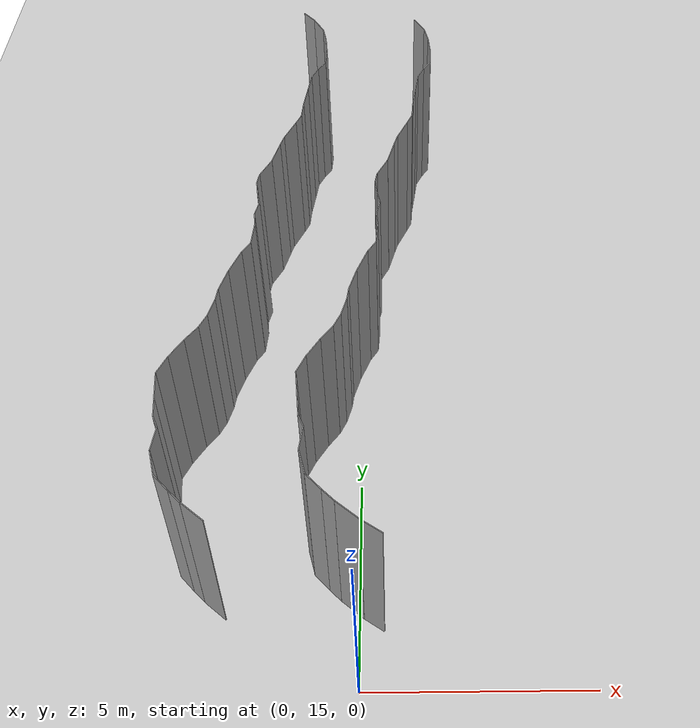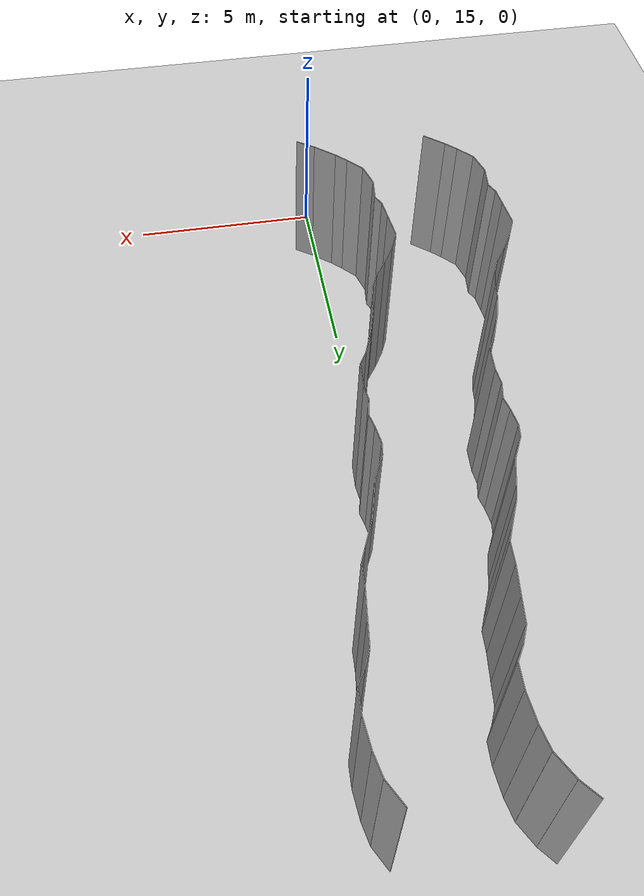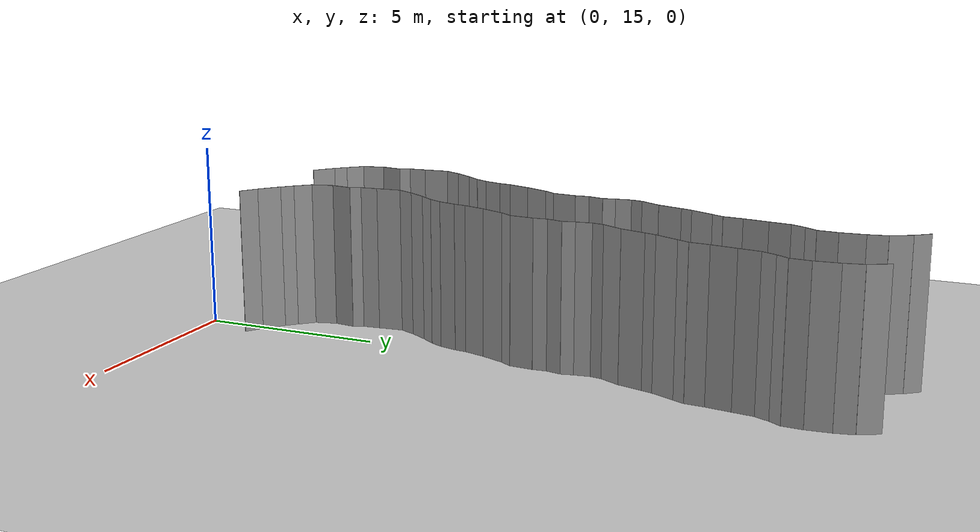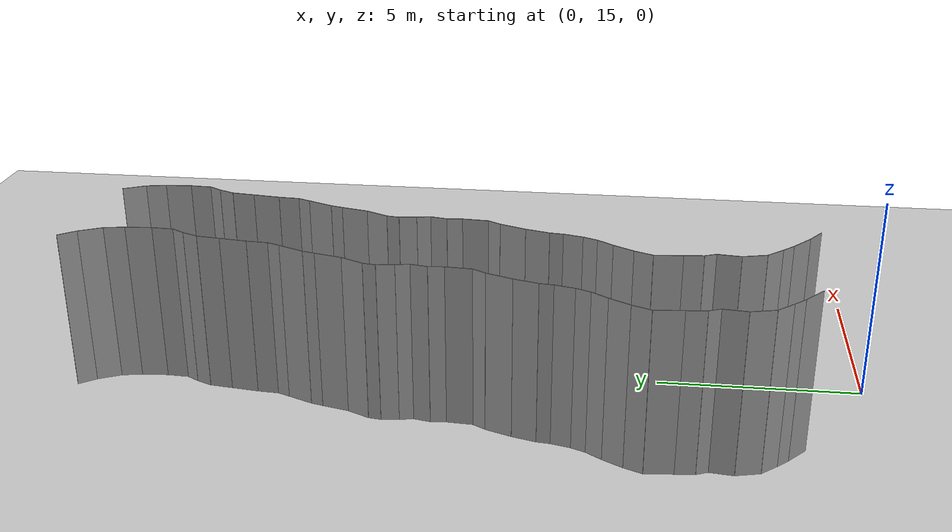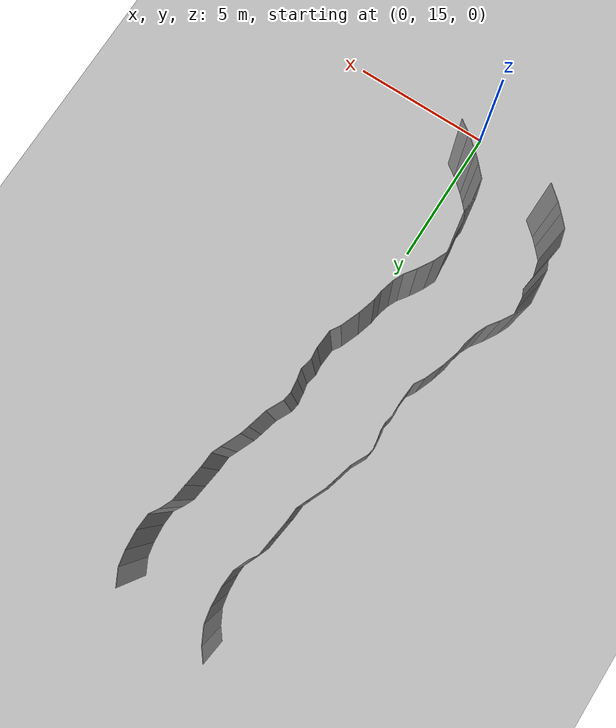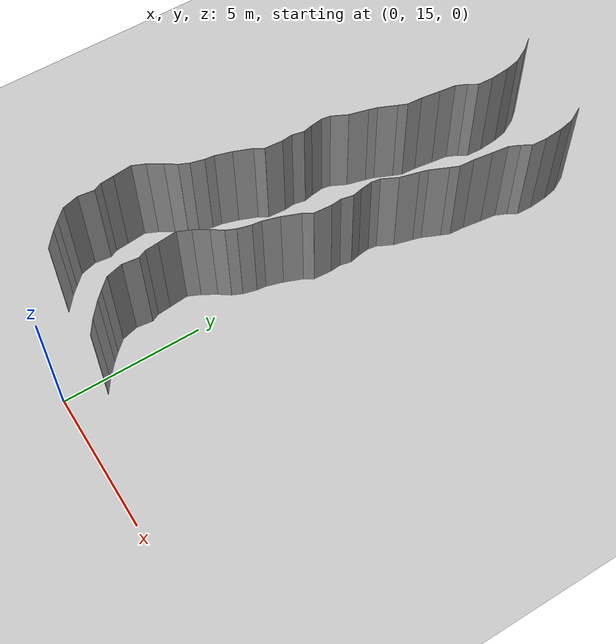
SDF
<sdf version="1.6">
 <world name="default">
  <model name="ground_plane">
   <static>1</static>
   <link name="link">
    <collision name="collision">
     <geometry><plane><normal>0 0 1</normal><size>200 200</size></plane></geometry>
     <surface><friction><ode><mu>100</mu><mu2>50</mu2></ode></friction></surface>
    </collision>
    <visual name="visual">
     <cast_shadows>0</cast_shadows>
     <geometry><plane><normal>0 0 1</normal><size>200 200</size></plane></geometry>
     <material>
      <script><uri>file://media/materials/scripts/gazebo.material</uri><name>Gazebo/Grey</name></script>
     </material>
    </visual>
   </link>
   <pose>0 100 0 0 -0 0</pose>
  </model>
  <model name="wall_73">
   <static>1</static>
   <pose>0.31329101043182295 16.49051149660358 2 0 0 0.9706262165268534</pose>
   <link name="link">
    <collision name="collision"><geometry><box><size>0.02 0.530782549284 4</size></box></geometry></collision>
    <visual name="visual">
     <material>
      <script><name>Gazebo/Grey</name><uri>file://media/materials/scripts/gazebo.material</uri></script>
     </material>
     <geometry><box><size>0.02 0.530782549284 4</size></box></geometry>
    </visual>
   </link>
  </model>
  <model name="wall_74">
   <static>1</static>
   <pose>-3.157199100774008 16.85156726297024 2 0 0 0.8723109527861052</pose>
   <link name="link">
    <collision name="collision"><geometry><box><size>0.02 0.656759292511 4</size></box></geometry></collision>
    <visual name="visual">
     <material>
      <script><name>Gazebo/Grey</name><uri>file://media/materials/scripts/gazebo.material</uri></script>
     </material>
     <geometry><box><size>0.02 0.656759292511 4</size></box></geometry>
    </visual>
   </link>
  </model>
  <model name="wall_75">
   <static>1</static>
   <pose>-0.15719910077400812 16.85156726297024 2 0 0 0.8723109527861052</pose>
   <link name="link">
    <collision name="collision"><geometry><box><size>0.02 0.656759292511 4</size></box></geometry></collision>
    <visual name="visual">
     <material>
      <script><name>Gazebo/Grey</name><uri>file://media/materials/scripts/gazebo.material</uri></script>
     </material>
     <geometry><box><size>0.02 0.656759292511 4</size></box></geometry>
    </visual>
   </link>
  </model>
  <model name="wall_76">
   <static>1</static>
   <pose>-3.5410019303740015 17.194973606267954 2 0 0 0.785719727233147</pose>
   <link name="link">
    <collision name="collision"><geometry><box><size>0.02 0.37414876576 4</size></box></geometry></collision>
    <visual name="visual">
     <material>
      <script><name>Gazebo/Grey</name><uri>file://media/materials/scripts/gazebo.material</uri></script>
     </material>
     <geometry><box><size>0.02 0.37414876576 4</size></box></geometry>
    </visual>
   </link>
  </model>
  <model name="wall_77">
   <static>1</static>
   <pose>-0.5410019303740015 17.194973606267954 2 0 0 0.785719727233147</pose>
   <link name="link">
    <collision name="collision"><geometry><box><size>0.02 0.37414876576 4</size></box></geometry></collision>
    <visual name="visual">
     <material>
      <script><name>Gazebo/Grey</name><uri>file://media/materials/scripts/gazebo.material</uri></script>
     </material>
     <geometry><box><size>0.02 0.37414876576 4</size></box></geometry>
    </visual>
   </link>
  </model>
  <model name="wall_78">
   <static>1</static>
   <pose>-3.846775899688538 17.514674699610165 2 0 0 0.7465932302845639</pose>
   <link name="link">
    <collision name="collision"><geometry><box><size>0.02 0.510791102315 4</size></box></geometry></collision>
    <visual name="visual">
     <material>
      <script><name>Gazebo/Grey</name><uri>file://media/materials/scripts/gazebo.material</uri></script>
     </material>
     <geometry><box><size>0.02 0.510791102315 4</size></box></geometry>
    </visual>
   </link>
  </model>
  <model name="wall_79">
   <static>1</static>
   <pose>-0.846775899688538 17.514674699610165 2 0 0 0.7465932302845639</pose>
   <link name="link">
    <collision name="collision"><geometry><box><size>0.02 0.510791102315 4</size></box></geometry></collision>
    <visual name="visual">
     <material>
      <script><name>Gazebo/Grey</name><uri>file://media/materials/scripts/gazebo.material</uri></script>
     </material>
     <geometry><box><size>0.02 0.510791102315 4</size></box></geometry>
    </visual>
   </link>
  </model>
  <model name="wall_80">
   <static>1</static>
   <pose>-4.097035900784917 17.9949265951174 2 0 0 0.25655750265288335</pose>
   <link name="link">
    <collision name="collision"><geometry><box><size>0.02 0.605394668137 4</size></box></geometry></collision>
    <visual name="visual">
     <material>
      <script><name>Gazebo/Grey</name><uri>file://media/materials/scripts/gazebo.material</uri></script>
     </material>
     <geometry><box><size>0.02 0.605394668137 4</size></box></geometry>
    </visual>
   </link>
  </model>
  <model name="wall_81">
   <static>1</static>
   <pose>-1.0970359007849169 17.9949265951174 2 0 0 0.25655750265288335</pose>
   <link name="link">
    <collision name="collision"><geometry><box><size>0.02 0.605394668137 4</size></box></geometry></collision>
    <visual name="visual">
     <material>
      <script><name>Gazebo/Grey</name><uri>file://media/materials/scripts/gazebo.material</uri></script>
     </material>
     <geometry><box><size>0.02 0.605394668137 4</size></box></geometry>
    </visual>
   </link>
  </model>
  <model name="wall_82">
   <static>1</static>
   <pose>-4.138989819580086 18.575017761858245 2 0 0 -0.12073275835425734</pose>
   <link name="link">
    <collision name="collision"><geometry><box><size>0.02 0.578816092706 4</size></box></geometry></collision>
    <visual name="visual">
     <material>
      <script><name>Gazebo/Grey</name><uri>file://media/materials/scripts/gazebo.material</uri></script>
     </material>
     <geometry><box><size>0.02 0.578816092706 4</size></box></geometry>
    </visual>
   </link>
  </model>
  <model name="wall_83">
   <static>1</static>
   <pose>-1.138989819580086 18.575017761858245 2 0 0 -0.12073275835425734</pose>
   <link name="link">
    <collision name="collision"><geometry><box><size>0.02 0.578816092706 4</size></box></geometry></collision>
    <visual name="visual">
     <material>
      <script><name>Gazebo/Grey</name><uri>file://media/materials/scripts/gazebo.material</uri></script>
     </material>
     <geometry><box><size>0.02 0.578816092706 4</size></box></geometry>
    </visual>
   </link>
  </model>
  <model name="wall_84">
   <static>1</static>
   <pose>-4.166649962904733 19.002464417773794 2 0 0 0.419591238896783</pose>
   <link name="link">
    <collision name="collision"><geometry><box><size>0.02 0.306913686298 4</size></box></geometry></collision>
    <visual name="visual">
     <material>
      <script><name>Gazebo/Grey</name><uri>file://media/materials/scripts/gazebo.material</uri></script>
     </material>
     <geometry><box><size>0.02 0.306913686298 4</size></box></geometry>
    </visual>
   </link>
  </model>
  <model name="wall_85">
   <static>1</static>
   <pose>-1.1666499629047333 19.002464417773794 2 0 0 0.419591238896783</pose>
   <link name="link">
    <collision name="collision"><geometry><box><size>0.02 0.306913686298 4</size></box></geometry></collision>
    <visual name="visual">
     <material>
      <script><name>Gazebo/Grey</name><uri>file://media/materials/scripts/gazebo.material</uri></script>
     </material>
     <geometry><box><size>0.02 0.306913686298 4</size></box></geometry>
    </visual>
   </link>
  </model>
  <model name="wall_86">
   <static>1</static>
   <pose>-4.251439221728751 19.37861607447198 2 0 0 0.09409549724734022</pose>
   <link name="link">
    <collision name="collision"><geometry><box><size>0.02 0.474110016909 4</size></box></geometry></collision>
    <visual name="visual">
     <material>
      <script><name>Gazebo/Grey</name><uri>file://media/materials/scripts/gazebo.material</uri></script>
     </material>
     <geometry><box><size>0.02 0.474110016909 4</size></box></geometry>
    </visual>
   </link>
  </model>
  <model name="wall_87">
   <static>1</static>
   <pose>-1.2514392217287513 19.37861607447198 2 0 0 0.09409549724734022</pose>
   <link name="link">
    <collision name="collision"><geometry><box><size>0.02 0.474110016909 4</size></box></geometry></collision>
    <visual name="visual">
     <material>
      <script><name>Gazebo/Grey</name><uri>file://media/materials/scripts/gazebo.material</uri></script>
     </material>
     <geometry><box><size>0.02 0.474110016909 4</size></box></geometry>
    </visual>
   </link>
  </model>
  <model name="wall_88">
   <static>1</static>
   <pose>-4.306238091092408 19.958148947083053 2 0 0 0.09440110870214406</pose>
   <link name="link">
    <collision name="collision"><geometry><box><size>0.02 0.690125825453 4</size></box></geometry></collision>
    <visual name="visual">
     <material>
      <script><name>Gazebo/Grey</name><uri>file://media/materials/scripts/gazebo.material</uri></script>
     </material>
     <geometry><box><size>0.02 0.690125825453 4</size></box></geometry>
    </visual>
   </link>
  </model>
  <model name="wall_89">
   <static>1</static>
   <pose>-1.3062380910924078 19.958148947083053 2 0 0 0.09440110870214406</pose>
   <link name="link">
    <collision name="collision"><geometry><box><size>0.02 0.690125825453 4</size></box></geometry></collision>
    <visual name="visual">
     <material>
      <script><name>Gazebo/Grey</name><uri>file://media/materials/scripts/gazebo.material</uri></script>
     </material>
     <geometry><box><size>0.02 0.690125825453 4</size></box></geometry>
    </visual>
   </link>
  </model>
  <model name="wall_90">
   <static>1</static>
   <pose>-4.238966576912943 20.52339285409663 2 0 0 -0.4229463978921424</pose>
   <link name="link">
    <collision name="collision"><geometry><box><size>0.02 0.486284411735 4</size></box></geometry></collision>
    <visual name="visual">
     <material>
      <script><name>Gazebo/Grey</name><uri>file://media/materials/scripts/gazebo.material</uri></script>
     </material>
     <geometry><box><size>0.02 0.486284411735 4</size></box></geometry>
    </visual>
   </link>
  </model>
  <model name="wall_91">
   <static>1</static>
   <pose>-1.2389665769129428 20.52339285409663 2 0 0 -0.4229463978921424</pose>
   <link name="link">
    <collision name="collision"><geometry><box><size>0.02 0.486284411735 4</size></box></geometry></collision>
    <visual name="visual">
     <material>
      <script><name>Gazebo/Grey</name><uri>file://media/materials/scripts/gazebo.material</uri></script>
     </material>
     <geometry><box><size>0.02 0.486284411735 4</size></box></geometry>
    </visual>
   </link>
  </model>
  <model name="wall_92">
   <static>1</static>
   <pose>-3.9930684026813275 20.98827357453839 2 0 0 -0.5410321931736826</pose>
   <link name="link">
    <collision name="collision"><geometry><box><size>0.02 0.567358175248 4</size></box></geometry></collision>
    <visual name="visual">
     <material>
      <script><name>Gazebo/Grey</name><uri>file://media/materials/scripts/gazebo.material</uri></script>
     </material>
     <geometry><box><size>0.02 0.567358175248 4</size></box></geometry>
    </visual>
   </link>
  </model>
  <model name="wall_93">
   <static>1</static>
   <pose>-0.9930684026813275 20.98827357453839 2 0 0 -0.5410321931736826</pose>
   <link name="link">
    <collision name="collision"><geometry><box><size>0.02 0.567358175248 4</size></box></geometry></collision>
    <visual name="visual">
     <material>
      <script><name>Gazebo/Grey</name><uri>file://media/materials/scripts/gazebo.material</uri></script>
     </material>
     <geometry><box><size>0.02 0.567358175248 4</size></box></geometry>
    </visual>
   </link>
  </model>
  <model name="wall_94">
   <static>1</static>
   <pose>-3.710954948063818 21.42127999099794 2 0 0 -0.6216800321269359</pose>
   <link name="link">
    <collision name="collision"><geometry><box><size>0.02 0.467075424061 4</size></box></geometry></collision>
    <visual name="visual">
     <material>
      <script><name>Gazebo/Grey</name><uri>file://media/materials/scripts/gazebo.material</uri></script>
     </material>
     <geometry><box><size>0.02 0.467075424061 4</size></box></geometry>
    </visual>
   </link>
  </model>
  <model name="wall_95">
   <static>1</static>
   <pose>-0.7109549480638182 21.42127999099794 2 0 0 -0.6216800321269359</pose>
   <link name="link">
    <collision name="collision"><geometry><box><size>0.02 0.467075424061 4</size></box></geometry></collision>
    <visual name="visual">
     <material>
      <script><name>Gazebo/Grey</name><uri>file://media/materials/scripts/gazebo.material</uri></script>
     </material>
     <geometry><box><size>0.02 0.467075424061 4</size></box></geometry>
    </visual>
   </link>
  </model>
  <model name="wall_96">
   <static>1</static>
   <pose>-3.495967016049042 21.784691667329003 2 0 0 -0.42701111978185924</pose>
   <link name="link">
    <collision name="collision"><geometry><box><size>0.02 0.3813824212 4</size></box></geometry></collision>
    <visual name="visual">
     <material>
      <script><name>Gazebo/Grey</name><uri>file://media/materials/scripts/gazebo.material</uri></script>
     </material>
     <geometry><box><size>0.02 0.3813824212 4</size></box></geometry>
    </visual>
   </link>
  </model>
  <model name="wall_97">
   <static>1</static>
   <pose>-0.4959670160490419 21.784691667329003 2 0 0 -0.42701111978185924</pose>
   <link name="link">
    <collision name="collision"><geometry><box><size>0.02 0.3813824212 4</size></box></geometry></collision>
    <visual name="visual">
     <material>
      <script><name>Gazebo/Grey</name><uri>file://media/materials/scripts/gazebo.material</uri></script>
     </material>
     <geometry><box><size>0.02 0.3813824212 4</size></box></geometry>
    </visual>
   </link>
  </model>
  <model name="wall_98">
   <static>1</static>
   <pose>-3.353470152372667 22.197159932918193 2 0 0 -0.2598797134249808</pose>
   <link name="link">
    <collision name="collision"><geometry><box><size>0.02 0.494400867129 4</size></box></geometry></collision>
    <visual name="visual">
     <material>
      <script><name>Gazebo/Grey</name><uri>file://media/materials/scripts/gazebo.material</uri></script>
     </material>
     <geometry><box><size>0.02 0.494400867129 4</size></box></geometry>
    </visual>
   </link>
  </model>
  <model name="wall_99">
   <static>1</static>
   <pose>-0.3534701523726671 22.197159932918193 2 0 0 -0.2598797134249808</pose>
   <link name="link">
    <collision name="collision"><geometry><box><size>0.02 0.494400867129 4</size></box></geometry></collision>
    <visual name="visual">
     <material>
      <script><name>Gazebo/Grey</name><uri>file://media/materials/scripts/gazebo.material</uri></script>
     </material>
     <geometry><box><size>0.02 0.494400867129 4</size></box></geometry>
    </visual>
   </link>
  </model>
  <model name="wall_100">
   <static>1</static>
   <pose>-3.2712459088520274 22.601115833528986 2 0 0 -0.1128289668641931</pose>
   <link name="link">
    <collision name="collision"><geometry><box><size>0.02 0.332224904483 4</size></box></geometry></collision>
    <visual name="visual">
     <material>
      <script><name>Gazebo/Grey</name><uri>file://media/materials/scripts/gazebo.material</uri></script>
     </material>
     <geometry><box><size>0.02 0.332224904483 4</size></box></geometry>
    </visual>
   </link>
  </model>
  <model name="wall_101">
   <static>1</static>
   <pose>-0.2712459088520274 22.601115833528986 2 0 0 -0.1128289668641931</pose>
   <link name="link">
    <collision name="collision"><geometry><box><size>0.02 0.332224904483 4</size></box></geometry></collision>
    <visual name="visual">
     <material>
      <script><name>Gazebo/Grey</name><uri>file://media/materials/scripts/gazebo.material</uri></script>
     </material>
     <geometry><box><size>0.02 0.332224904483 4</size></box></geometry>
    </visual>
   </link>
  </model>
  <model name="wall_102">
   <static>1</static>
   <pose>-3.165956985885072 23.061239334601677 2 0 0 -0.28543334103901064</pose>
   <link name="link">
    <collision name="collision"><geometry><box><size>0.02 0.615018340031 4</size></box></geometry></collision>
    <visual name="visual">
     <material>
      <script><name>Gazebo/Grey</name><uri>file://media/materials/scripts/gazebo.material</uri></script>
     </material>
     <geometry><box><size>0.02 0.615018340031 4</size></box></geometry>
    </visual>
   </link>
  </model>
  <model name="wall_103">
   <static>1</static>
   <pose>-0.1659569858850718 23.061239334601677 2 0 0 -0.28543334103901064</pose>
   <link name="link">
    <collision name="collision"><geometry><box><size>0.02 0.615018340031 4</size></box></geometry></collision>
    <visual name="visual">
     <material>
      <script><name>Gazebo/Grey</name><uri>file://media/materials/scripts/gazebo.material</uri></script>
     </material>
     <geometry><box><size>0.02 0.615018340031 4</size></box></geometry>
    </visual>
   </link>
  </model>
  <model name="wall_104">
   <static>1</static>
   <pose>-2.953028230615376 23.677087026653815 2 0 0 -0.37520157667770737</pose>
   <link name="link">
    <collision name="collision"><geometry><box><size>0.02 0.68952877134 4</size></box></geometry></collision>
    <visual name="visual">
     <material>
      <script><name>Gazebo/Grey</name><uri>file://media/materials/scripts/gazebo.material</uri></script>
     </material>
     <geometry><box><size>0.02 0.68952877134 4</size></box></geometry>
    </visual>
   </link>
  </model>
  <model name="wall_105">
   <static>1</static>
   <pose>0.04697176938462411 23.677087026653815 2 0 0 -0.37520157667770737</pose>
   <link name="link">
    <collision name="collision"><geometry><box><size>0.02 0.68952877134 4</size></box></geometry></collision>
    <visual name="visual">
     <material>
      <script><name>Gazebo/Grey</name><uri>file://media/materials/scripts/gazebo.material</uri></script>
     </material>
     <geometry><box><size>0.02 0.68952877134 4</size></box></geometry>
    </visual>
   </link>
  </model>
  <model name="wall_106">
   <static>1</static>
   <pose>-2.730010507990543 24.154274372580694 2 0 0 -0.553623134160334</pose>
   <link name="link">
    <collision name="collision"><geometry><box><size>0.02 0.367745806156 4</size></box></geometry></collision>
    <visual name="visual">
     <material>
      <script><name>Gazebo/Grey</name><uri>file://media/materials/scripts/gazebo.material</uri></script>
     </material>
     <geometry><box><size>0.02 0.367745806156 4</size></box></geometry>
    </visual>
   </link>
  </model>
  <model name="wall_107">
   <static>1</static>
   <pose>0.269989492009457 24.154274372580694 2 0 0 -0.553623134160334</pose>
   <link name="link">
    <collision name="collision"><geometry><box><size>0.02 0.367745806156 4</size></box></geometry></collision>
    <visual name="visual">
     <material>
      <script><name>Gazebo/Grey</name><uri>file://media/materials/scripts/gazebo.material</uri></script>
     </material>
     <geometry><box><size>0.02 0.367745806156 4</size></box></geometry>
    </visual>
   </link>
  </model>
  <model name="wall_108">
   <static>1</static>
   <pose>-2.610411606679472 24.632531272508885 2 0 0 -0.07110431062706264</pose>
   <link name="link">
    <collision name="collision"><geometry><box><size>0.02 0.64533061442 4</size></box></geometry></collision>
    <visual name="visual">
     <material>
      <script><name>Gazebo/Grey</name><uri>file://media/materials/scripts/gazebo.material</uri></script>
     </material>
     <geometry><box><size>0.02 0.64533061442 4</size></box></geometry>
    </visual>
   </link>
  </model>
  <model name="wall_109">
   <static>1</static>
   <pose>0.38958839332052797 24.632531272508885 2 0 0 -0.07110431062706264</pose>
   <link name="link">
    <collision name="collision"><geometry><box><size>0.02 0.64533061442 4</size></box></geometry></collision>
    <visual name="visual">
     <material>
      <script><name>Gazebo/Grey</name><uri>file://media/materials/scripts/gazebo.material</uri></script>
     </material>
     <geometry><box><size>0.02 0.64533061442 4</size></box></geometry>
    </visual>
   </link>
  </model>
  <model name="wall_110">
   <static>1</static>
   <pose>-2.606587573060104 25.144593253809386 2 0 0 0.10007637776932564</pose>
   <link name="link">
    <collision name="collision"><geometry><box><size>0.02 0.382337008615 4</size></box></geometry></collision>
    <visual name="visual">
     <material>
      <script><name>Gazebo/Grey</name><uri>file://media/materials/scripts/gazebo.material</uri></script>
     </material>
     <geometry><box><size>0.02 0.382337008615 4</size></box></geometry>
    </visual>
   </link>
  </model>
  <model name="wall_111">
   <static>1</static>
   <pose>0.393412426939896 25.144593253809386 2 0 0 0.10007637776932564</pose>
   <link name="link">
    <collision name="collision"><geometry><box><size>0.02 0.382337008615 4</size></box></geometry></collision>
    <visual name="visual">
     <material>
      <script><name>Gazebo/Grey</name><uri>file://media/materials/scripts/gazebo.material</uri></script>
     </material>
     <geometry><box><size>0.02 0.382337008615 4</size></box></geometry>
    </visual>
   </link>
  </model>
  <model name="wall_112">
   <static>1</static>
   <pose>-2.580560299033341 25.54211649356278 2 0 0 -0.21433309398779085</pose>
   <link name="link">
    <collision name="collision"><geometry><box><size>0.02 0.424331846118 4</size></box></geometry></collision>
    <visual name="visual">
     <material>
      <script><name>Gazebo/Grey</name><uri>file://media/materials/scripts/gazebo.material</uri></script>
     </material>
     <geometry><box><size>0.02 0.424331846118 4</size></box></geometry>
    </visual>
   </link>
  </model>
  <model name="wall_113">
   <static>1</static>
   <pose>0.41943970096665906 25.54211649356278 2 0 0 -0.21433309398779085</pose>
   <link name="link">
    <collision name="collision"><geometry><box><size>0.02 0.424331846118 4</size></box></geometry></collision>
    <visual name="visual">
     <material>
      <script><name>Gazebo/Grey</name><uri>file://media/materials/scripts/gazebo.material</uri></script>
     </material>
     <geometry><box><size>0.02 0.424331846118 4</size></box></geometry>
    </visual>
   </link>
  </model>
  <model name="wall_114">
   <static>1</static>
   <pose>-2.5710455850308485 25.917240489694972 2 0 0 0.20911103090854663</pose>
   <link name="link">
    <collision name="collision"><geometry><box><size>0.02 0.343099649162 4</size></box></geometry></collision>
    <visual name="visual">
     <material>
      <script><name>Gazebo/Grey</name><uri>file://media/materials/scripts/gazebo.material</uri></script>
     </material>
     <geometry><box><size>0.02 0.343099649162 4</size></box></geometry>
    </visual>
   </link>
  </model>
  <model name="wall_115">
   <static>1</static>
   <pose>0.42895441496915154 25.917240489694972 2 0 0 0.20911103090854663</pose>
   <link name="link">
    <collision name="collision"><geometry><box><size>0.02 0.343099649162 4</size></box></geometry></collision>
    <visual name="visual">
     <material>
      <script><name>Gazebo/Grey</name><uri>file://media/materials/scripts/gazebo.material</uri></script>
     </material>
     <geometry><box><size>0.02 0.343099649162 4</size></box></geometry>
    </visual>
   </link>
  </model>
  <model name="wall_116">
   <static>1</static>
   <pose>-2.634838933112953 26.30055781936104 2 0 0 0.13003086443598608</pose>
   <link name="link">
    <collision name="collision"><geometry><box><size>0.02 0.434678751812 4</size></box></geometry></collision>
    <visual name="visual">
     <material>
      <script><name>Gazebo/Grey</name><uri>file://media/materials/scripts/gazebo.material</uri></script>
     </material>
     <geometry><box><size>0.02 0.434678751812 4</size></box></geometry>
    </visual>
   </link>
  </model>
  <model name="wall_117">
   <static>1</static>
   <pose>0.3651610668870471 26.30055781936104 2 0 0 0.13003086443598608</pose>
   <link name="link">
    <collision name="collision"><geometry><box><size>0.02 0.434678751812 4</size></box></geometry></collision>
    <visual name="visual">
     <material>
      <script><name>Gazebo/Grey</name><uri>file://media/materials/scripts/gazebo.material</uri></script>
     </material>
     <geometry><box><size>0.02 0.434678751812 4</size></box></geometry>
    </visual>
   </link>
  </model>
  <model name="wall_118">
   <static>1</static>
   <pose>-2.6384001168717375 26.671397148985868 2 0 0 -0.15718930080920335</pose>
   <link name="link">
    <collision name="collision"><geometry><box><size>0.02 0.314547512382 4</size></box></geometry></collision>
    <visual name="visual">
     <material>
      <script><name>Gazebo/Grey</name><uri>file://media/materials/scripts/gazebo.material</uri></script>
     </material>
     <geometry><box><size>0.02 0.314547512382 4</size></box></geometry>
    </visual>
   </link>
  </model>
  <model name="wall_119">
   <static>1</static>
   <pose>0.3615998831282625 26.671397148985868 2 0 0 -0.15718930080920335</pose>
   <link name="link">
    <collision name="collision"><geometry><box><size>0.02 0.314547512382 4</size></box></geometry></collision>
    <visual name="visual">
     <material>
      <script><name>Gazebo/Grey</name><uri>file://media/materials/scripts/gazebo.material</uri></script>
     </material>
     <geometry><box><size>0.02 0.314547512382 4</size></box></geometry>
    </visual>
   </link>
  </model>
  <model name="wall_120">
   <static>1</static>
   <pose>-2.477805885947757 27.099670745124115 2 0 0 -0.4621949179068584</pose>
   <link name="link">
    <collision name="collision"><geometry><box><size>0.02 0.609867469013 4</size></box></geometry></collision>
    <visual name="visual">
     <material>
      <script><name>Gazebo/Grey</name><uri>file://media/materials/scripts/gazebo.material</uri></script>
     </material>
     <geometry><box><size>0.02 0.609867469013 4</size></box></geometry>
    </visual>
   </link>
  </model>
  <model name="wall_121">
   <static>1</static>
   <pose>0.522194114052243 27.099670745124115 2 0 0 -0.4621949179068584</pose>
   <link name="link">
    <collision name="collision"><geometry><box><size>0.02 0.609867469013 4</size></box></geometry></collision>
    <visual name="visual">
     <material>
      <script><name>Gazebo/Grey</name><uri>file://media/materials/scripts/gazebo.material</uri></script>
     </material>
     <geometry><box><size>0.02 0.609867469013 4</size></box></geometry>
    </visual>
   </link>
  </model>
  <model name="wall_122">
   <static>1</static>
   <pose>-2.253935715563797 27.707336063220218 2 0 0 -0.256793043557906</pose>
   <link name="link">
    <collision name="collision"><geometry><box><size>0.02 0.692148896907 4</size></box></geometry></collision>
    <visual name="visual">
     <material>
      <script><name>Gazebo/Grey</name><uri>file://media/materials/scripts/gazebo.material</uri></script>
     </material>
     <geometry><box><size>0.02 0.692148896907 4</size></box></geometry>
    </visual>
   </link>
  </model>
  <model name="wall_123">
   <static>1</static>
   <pose>0.7460642844362031 27.707336063220218 2 0 0 -0.256793043557906</pose>
   <link name="link">
    <collision name="collision"><geometry><box><size>0.02 0.692148896907 4</size></box></geometry></collision>
    <visual name="visual">
     <material>
      <script><name>Gazebo/Grey</name><uri>file://media/materials/scripts/gazebo.material</uri></script>
     </material>
     <geometry><box><size>0.02 0.692148896907 4</size></box></geometry>
    </visual>
   </link>
  </model>
  <model name="wall_124">
   <static>1</static>
   <pose>-2.1234169172484507 28.192327968106706 2 0 0 -0.2763901247205906</pose>
   <link name="link">
    <collision name="collision"><geometry><box><size>0.02 0.31238694272 4</size></box></geometry></collision>
    <visual name="visual">
     <material>
      <script><name>Gazebo/Grey</name><uri>file://media/materials/scripts/gazebo.material</uri></script>
     </material>
     <geometry><box><size>0.02 0.31238694272 4</size></box></geometry>
    </visual>
   </link>
  </model>
  <model name="wall_125">
   <static>1</static>
   <pose>0.8765830827515493 28.192327968106706 2 0 0 -0.2763901247205906</pose>
   <link name="link">
    <collision name="collision"><geometry><box><size>0.02 0.31238694272 4</size></box></geometry></collision>
    <visual name="visual">
     <material>
      <script><name>Gazebo/Grey</name><uri>file://media/materials/scripts/gazebo.material</uri></script>
     </material>
     <geometry><box><size>0.02 0.31238694272 4</size></box></geometry>
    </visual>
   </link>
  </model>
  <model name="wall_126">
   <static>1</static>
   <pose>-1.941748330839594 28.655936767358778 2 0 0 -0.41764342293041185</pose>
   <link name="link">
    <collision name="collision"><geometry><box><size>0.02 0.685617395559 4</size></box></geometry></collision>
    <visual name="visual">
     <material>
      <script><name>Gazebo/Grey</name><uri>file://media/materials/scripts/gazebo.material</uri></script>
     </material>
     <geometry><box><size>0.02 0.685617395559 4</size></box></geometry>
    </visual>
   </link>
  </model>
  <model name="wall_127">
   <static>1</static>
   <pose>1.058251669160406 28.655936767358778 2 0 0 -0.41764342293041185</pose>
   <link name="link">
    <collision name="collision"><geometry><box><size>0.02 0.685617395559 4</size></box></geometry></collision>
    <visual name="visual">
     <material>
      <script><name>Gazebo/Grey</name><uri>file://media/materials/scripts/gazebo.material</uri></script>
     </material>
     <geometry><box><size>0.02 0.685617395559 4</size></box></geometry>
    </visual>
   </link>
  </model>
  <model name="wall_128">
   <static>1</static>
   <pose>-1.7371283019810932 29.123028705558145 2 0 0 -0.4031430428619592</pose>
   <link name="link">
    <collision name="collision"><geometry><box><size>0.02 0.334296880591 4</size></box></geometry></collision>
    <visual name="visual">
     <material>
      <script><name>Gazebo/Grey</name><uri>file://media/materials/scripts/gazebo.material</uri></script>
     </material>
     <geometry><box><size>0.02 0.334296880591 4</size></box></geometry>
    </visual>
   </link>
  </model>
  <model name="wall_129">
   <static>1</static>
   <pose>1.2628716980189068 29.123028705558145 2 0 0 -0.4031430428619592</pose>
   <link name="link">
    <collision name="collision"><geometry><box><size>0.02 0.334296880591 4</size></box></geometry></collision>
    <visual name="visual">
     <material>
      <script><name>Gazebo/Grey</name><uri>file://media/materials/scripts/gazebo.material</uri></script>
     </material>
     <geometry><box><size>0.02 0.334296880591 4</size></box></geometry>
    </visual>
   </link>
  </model>
  <model name="wall_130">
   <static>1</static>
   <pose>-1.654270039076387 29.539991248473793 2 0 0 -0.06557119285910054</pose>
   <link name="link">
    <collision name="collision"><geometry><box><size>0.02 0.52756169532 4</size></box></geometry></collision>
    <visual name="visual">
     <material>
      <script><name>Gazebo/Grey</name><uri>file://media/materials/scripts/gazebo.material</uri></script>
     </material>
     <geometry><box><size>0.02 0.52756169532 4</size></box></geometry>
    </visual>
   </link>
  </model>
  <model name="wall_131">
   <static>1</static>
   <pose>1.345729960923613 29.539991248473793 2 0 0 -0.06557119285910054</pose>
   <link name="link">
    <collision name="collision"><geometry><box><size>0.02 0.52756169532 4</size></box></geometry></collision>
    <visual name="visual">
     <material>
      <script><name>Gazebo/Grey</name><uri>file://media/materials/scripts/gazebo.material</uri></script>
     </material>
     <geometry><box><size>0.02 0.52756169532 4</size></box></geometry>
    </visual>
   </link>
  </model>
  <model name="wall_132">
   <static>1</static>
   <pose>-1.5910778223394042 30.143582063983537 2 0 0 -0.13406555277639756</pose>
   <link name="link">
    <collision name="collision"><geometry><box><size>0.02 0.686917617745 4</size></box></geometry></collision>
    <visual name="visual">
     <material>
      <script><name>Gazebo/Grey</name><uri>file://media/materials/scripts/gazebo.material</uri></script>
     </material>
     <geometry><box><size>0.02 0.686917617745 4</size></box></geometry>
    </visual>
   </link>
  </model>
  <model name="wall_133">
   <static>1</static>
   <pose>1.4089221776605958 30.143582063983537 2 0 0 -0.13406555277639756</pose>
   <link name="link">
    <collision name="collision"><geometry><box><size>0.02 0.686917617745 4</size></box></geometry></collision>
    <visual name="visual">
     <material>
      <script><name>Gazebo/Grey</name><uri>file://media/materials/scripts/gazebo.material</uri></script>
     </material>
     <geometry><box><size>0.02 0.686917617745 4</size></box></geometry>
    </visual>
   </link>
  </model>
  <model name="wall_134">
   <static>1</static>
   <pose>-1.5084514811920378 30.772263859099766 2 0 0 -0.1266767725087295</pose>
   <link name="link">
    <collision name="collision"><geometry><box><size>0.02 0.581267481295 4</size></box></geometry></collision>
    <visual name="visual">
     <material>
      <script><name>Gazebo/Grey</name><uri>file://media/materials/scripts/gazebo.material</uri></script>
     </material>
     <geometry><box><size>0.02 0.581267481295 4</size></box></geometry>
    </visual>
   </link>
  </model>
  <model name="wall_135">
   <static>1</static>
   <pose>1.4915485188079622 30.772263859099766 2 0 0 -0.1266767725087295</pose>
   <link name="link">
    <collision name="collision"><geometry><box><size>0.02 0.581267481295 4</size></box></geometry></collision>
    <visual name="visual">
     <material>
      <script><name>Gazebo/Grey</name><uri>file://media/materials/scripts/gazebo.material</uri></script>
     </material>
     <geometry><box><size>0.02 0.581267481295 4</size></box></geometry>
    </visual>
   </link>
  </model>
  <model name="wall_136">
   <static>1</static>
   <pose>-1.3851580831297265 31.253880707998036 2 0 0 -0.4210667433838429</pose>
   <link name="link">
    <collision name="collision"><geometry><box><size>0.02 0.423626061173 4</size></box></geometry></collision>
    <visual name="visual">
     <material>
      <script><name>Gazebo/Grey</name><uri>file://media/materials/scripts/gazebo.material</uri></script>
     </material>
     <geometry><box><size>0.02 0.423626061173 4</size></box></geometry>
    </visual>
   </link>
  </model>
  <model name="wall_137">
   <static>1</static>
   <pose>1.6148419168702735 31.253880707998036 2 0 0 -0.4210667433838429</pose>
   <link name="link">
    <collision name="collision"><geometry><box><size>0.02 0.423626061173 4</size></box></geometry></collision>
    <visual name="visual">
     <material>
      <script><name>Gazebo/Grey</name><uri>file://media/materials/scripts/gazebo.material</uri></script>
     </material>
     <geometry><box><size>0.02 0.423626061173 4</size></box></geometry>
    </visual>
   </link>
  </model>
  <model name="wall_138">
   <static>1</static>
   <pose>-1.2009383311228132 31.604557833895228 2 0 0 -0.5553539861318001</pose>
   <link name="link">
    <collision name="collision"><geometry><box><size>0.02 0.37039582826 4</size></box></geometry></collision>
    <visual name="visual">
     <material>
      <script><name>Gazebo/Grey</name><uri>file://media/materials/scripts/gazebo.material</uri></script>
     </material>
     <geometry><box><size>0.02 0.37039582826 4</size></box></geometry>
    </visual>
   </link>
  </model>
  <model name="wall_139">
   <static>1</static>
   <pose>1.7990616688771868 31.604557833895228 2 0 0 -0.5553539861318001</pose>
   <link name="link">
    <collision name="collision"><geometry><box><size>0.02 0.37039582826 4</size></box></geometry></collision>
    <visual name="visual">
     <material>
      <script><name>Gazebo/Grey</name><uri>file://media/materials/scripts/gazebo.material</uri></script>
     </material>
     <geometry><box><size>0.02 0.37039582826 4</size></box></geometry>
    </visual>
   </link>
  </model>
  <model name="wall_140">
   <static>1</static>
   <pose>-1.0878488723126865 32.03212303751535 2 0 0 -0.057099039745845966</pose>
   <link name="link">
    <collision name="collision"><geometry><box><size>0.02 0.541282070966 4</size></box></geometry></collision>
    <visual name="visual">
     <material>
      <script><name>Gazebo/Grey</name><uri>file://media/materials/scripts/gazebo.material</uri></script>
     </material>
     <geometry><box><size>0.02 0.541282070966 4</size></box></geometry>
    </visual>
   </link>
  </model>
  <model name="wall_141">
   <static>1</static>
   <pose>1.9121511276873135 32.03212303751535 2 0 0 -0.057099039745845966</pose>
   <link name="link">
    <collision name="collision"><geometry><box><size>0.02 0.541282070966 4</size></box></geometry></collision>
    <visual name="visual">
     <material>
      <script><name>Gazebo/Grey</name><uri>file://media/materials/scripts/gazebo.material</uri></script>
     </material>
     <geometry><box><size>0.02 0.541282070966 4</size></box></geometry>
    </visual>
   </link>
  </model>
  <model name="wall_142">
   <static>1</static>
   <pose>-1.099058975555688 32.629666789348285 2 0 0 0.08124904999487781</pose>
   <link name="link">
    <collision name="collision"><geometry><box><size>0.02 0.65685445378 4</size></box></geometry></collision>
    <visual name="visual">
     <material>
      <script><name>Gazebo/Grey</name><uri>file://media/materials/scripts/gazebo.material</uri></script>
     </material>
     <geometry><box><size>0.02 0.65685445378 4</size></box></geometry>
    </visual>
   </link>
  </model>
  <model name="wall_143">
   <static>1</static>
   <pose>1.900941024444312 32.629666789348285 2 0 0 0.08124904999487781</pose>
   <link name="link">
    <collision name="collision"><geometry><box><size>0.02 0.65685445378 4</size></box></geometry></collision>
    <visual name="visual">
     <material>
      <script><name>Gazebo/Grey</name><uri>file://media/materials/scripts/gazebo.material</uri></script>
     </material>
     <geometry><box><size>0.02 0.65685445378 4</size></box></geometry>
    </visual>
   </link>
  </model>
  <model name="wall_144">
   <static>1</static>
   <pose>-1.175911417926109 33.21020891520742 2 0 0 0.19571541852388596</pose>
   <link name="link">
    <collision name="collision"><geometry><box><size>0.02 0.516252571688 4</size></box></geometry></collision>
    <visual name="visual">
     <material>
      <script><name>Gazebo/Grey</name><uri>file://media/materials/scripts/gazebo.material</uri></script>
     </material>
     <geometry><box><size>0.02 0.516252571688 4</size></box></geometry>
    </visual>
   </link>
  </model>
  <model name="wall_145">
   <static>1</static>
   <pose>1.824088582073891 33.21020891520742 2 0 0 0.19571541852388596</pose>
   <link name="link">
    <collision name="collision"><geometry><box><size>0.02 0.516252571688 4</size></box></geometry></collision>
    <visual name="visual">
     <material>
      <script><name>Gazebo/Grey</name><uri>file://media/materials/scripts/gazebo.material</uri></script>
     </material>
     <geometry><box><size>0.02 0.516252571688 4</size></box></geometry>
    </visual>
   </link>
  </model>
  <model name="wall_146">
   <static>1</static>
   <pose>-1.3691287681798427 33.73075991767254 2 0 0 0.49121412529160896</pose>
   <link name="link">
    <collision name="collision"><geometry><box><size>0.02 0.606406308177 4</size></box></geometry></collision>
    <visual name="visual">
     <material>
      <script><name>Gazebo/Grey</name><uri>file://media/materials/scripts/gazebo.material</uri></script>
     </material>
     <geometry><box><size>0.02 0.606406308177 4</size></box></geometry>
    </visual>
   </link>
  </model>
  <model name="wall_147">
   <static>1</static>
   <pose>1.6308712318201573 33.73075991767254 2 0 0 0.49121412529160896</pose>
   <link name="link">
    <collision name="collision"><geometry><box><size>0.02 0.606406308177 4</size></box></geometry></collision>
    <visual name="visual">
     <material>
      <script><name>Gazebo/Grey</name><uri>file://media/materials/scripts/gazebo.material</uri></script>
     </material>
     <geometry><box><size>0.02 0.606406308177 4</size></box></geometry>
    </visual>
   </link>
  </model>
  <model name="wall_148">
   <static>1</static>
   <pose>-1.667540203252446 34.1894363242963 2 0 0 0.6821305578264967</pose>
   <link name="link">
    <collision name="collision"><geometry><box><size>0.02 0.492955525342 4</size></box></geometry></collision>
    <visual name="visual">
     <material>
      <script><name>Gazebo/Grey</name><uri>file://media/materials/scripts/gazebo.material</uri></script>
     </material>
     <geometry><box><size>0.02 0.492955525342 4</size></box></geometry>
    </visual>
   </link>
  </model>
 </world>
</sdf>
